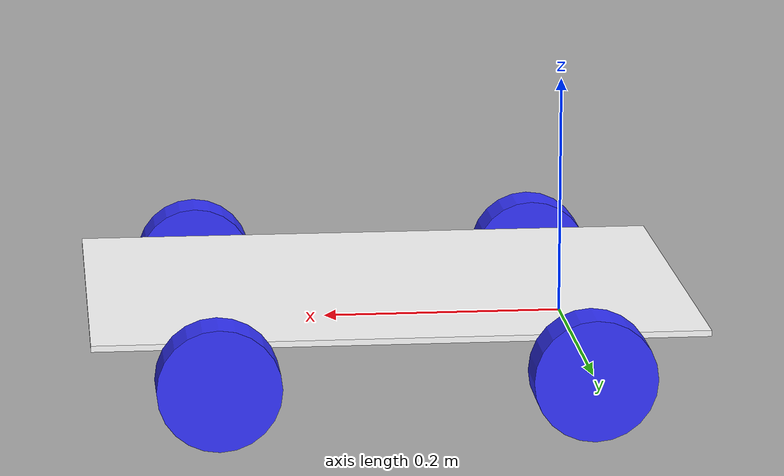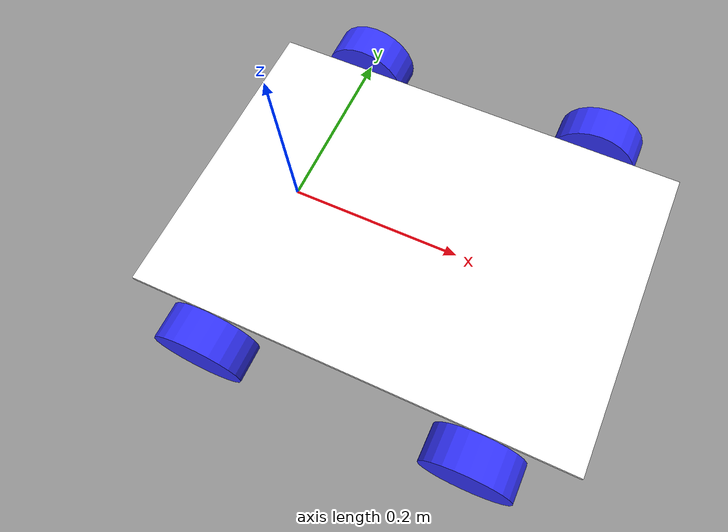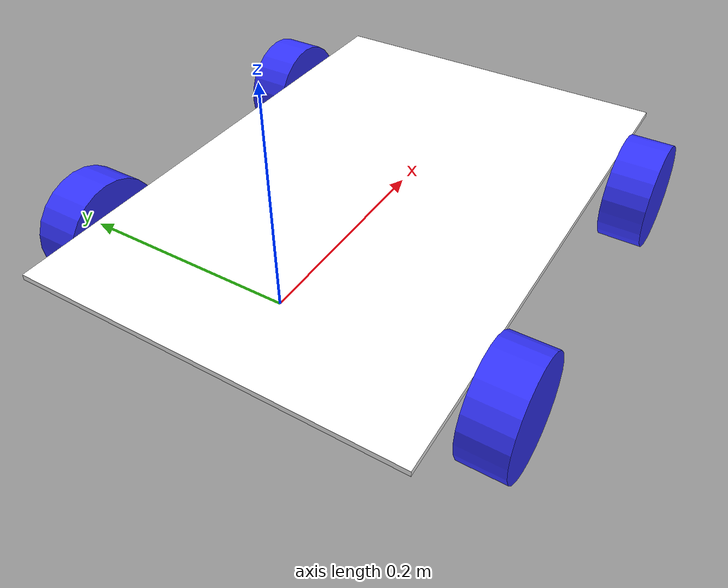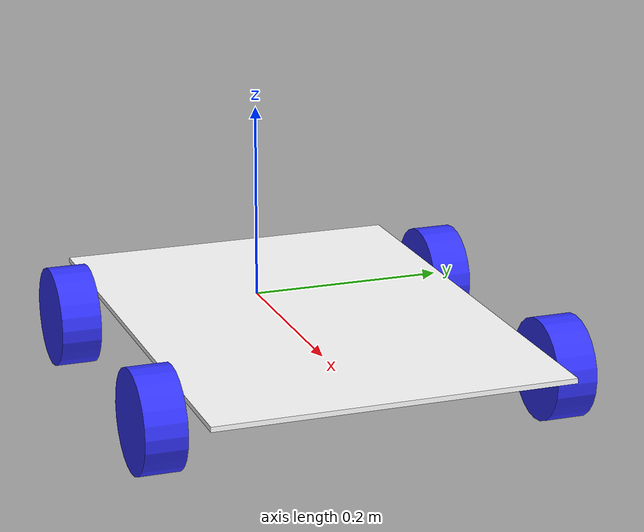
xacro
<?xml version="1.0"?>
<robot xmlns:xacro="http://www.ros.org/wiki/xacro" >

    <xacro:include filename="inertial_macros.xacro"/>

    <material name="white">
        <color rgba="1 1 1 1" />
    </material>

    <material name="orange">
        <color rgba="1 0.3 0.1 1"/>
    </material>

    <material name="blue">
        <color rgba="0.2 0.2 1 1"/>
    </material>

    <material name="black">
        <color rgba="0 0 0 1"/>
    </material>

    <!-- BASE LINK -->

    <link name="base_link">

    </link>

    <!-- CHASSIS LINK -->

    <joint name="chassis_joint" type="fixed">
        <parent link="base_link"/>
        <child link="chassis"/>
        <origin xyz="-0.1 0 -0.05"/>
    </joint>

    <link name="chassis">
        <visual>
            <origin xyz="0.25 0 0.075"/>
            <geometry>
                <box size="0.5 0.35 0.005"/>
            </geometry>
            <material name="white"/>
        </visual>
        <collision>
            <origin xyz="0.25 0 0.075"/>
            <geometry>
                <box size="0.5 0.35 0.005"/>
            </geometry>
        </collision>
        <xacro:inertial_box mass="0.5" x="0.5" y="0.35" z="0.005">
            <origin xyz="0.25 0 0.075" rpy="0 0 0"/>
        </xacro:inertial_box>
    </link>

    <gazebo reference="chassis">
        <material>Gazebo/White</material>
    </gazebo>

    <!-- FRONT LEFT WHEEL LINK -->

    <joint name="front_left_wheel_joint" type="continuous">
        <parent link="base_link"/>
        <child link="front_left_wheel"/>
        <origin xyz="0.3 0.2 0" rpy="-${pi/2} 0 0" />
        <axis xyz="0 0 1"/>
    </joint>

    <link name="front_left_wheel">
        <visual>
            <geometry>
                <cylinder radius="0.05" length="0.04"/>
            </geometry>
            <material name="blue"/>
        </visual>
        <collision>
            <geometry>
                <cylinder radius="0.05" length="0.04"/>
            </geometry>
        </collision>
        <xacro:inertial_cylinder mass="0.1" length="0.04" radius="0.05">
            <origin xyz="0 0 0" rpy="0 0 0"/>
        </xacro:inertial_cylinder>
    </link>

    <gazebo reference="chassis">
        <material>Gazebo/Black</material>
    </gazebo>

    <!-- FRONT RIGHT WHEEL LINK -->

    <joint name="front_right_wheel_joint" type="continuous">
        <parent link="base_link"/>
        <child link="front_right_wheel"/>
        <origin xyz="0.3 -0.2 0" rpy="${pi/2} 0 0" />
        <axis xyz="0 0 -1"/>
    </joint>

    <link name="front_right_wheel">
        <visual>
            <geometry>
                <cylinder radius="0.05" length="0.04"/>
            </geometry>
            <material name="blue"/>
        </visual>
        <collision>
            <geometry>
                <cylinder radius="0.05" length="0.04"/>
            </geometry>
        </collision>
        <xacro:inertial_cylinder mass="0.1" length="0.04" radius="0.05">
            <origin xyz="0 0 0" rpy="0 0 0"/>
        </xacro:inertial_cylinder>
    </link>

    <gazebo reference="chassis">
        <material>Gazebo/Black</material>
    </gazebo>

    <!-- BACK LEFT WHEEL LINK -->

    <joint name="back_left_wheel_joint" type="continuous">
        <parent link="base_link"/>
        <child link="back_left_wheel"/>
        <origin xyz="0 0.2 0" rpy="-${pi/2} 0 0" />
        <axis xyz="0 0 1"/>
    </joint>

    <link name="back_left_wheel">
        <visual>
            <geometry>
                <cylinder radius="0.05" length="0.04"/>
            </geometry>
            <material name="blue"/>
        </visual>
        <collision>
            <geometry>
                <cylinder radius="0.05" length="0.04"/>
            </geometry>
        </collision>
        <xacro:inertial_cylinder mass="0.1" length="0.04" radius="0.05">
            <origin xyz="0 0 0" rpy="0 0 0"/>
        </xacro:inertial_cylinder>
    </link>

    <gazebo reference="chassis">
        <material>Gazebo/Black</material>
    </gazebo>

    <!-- BACK RIGHT WHEEL LINK -->

    <joint name="back_right_wheel_joint" type="continuous">
        <parent link="base_link"/>
        <child link="back_right_wheel"/>
        <origin xyz="0 -0.2 0" rpy="${pi/2} 0 0" />
        <axis xyz="0 0 -1"/>
    </joint>

    <link name="back_right_wheel">
        <visual>
            <geometry>
                <cylinder radius="0.05" length="0.04"/>
            </geometry>
            <material name="blue"/>
        </visual>
        <collision>
            <geometry>
                <cylinder radius="0.05" length="0.04"/>
            </geometry>
        </collision>
        <xacro:inertial_cylinder mass="0.1" length="0.04" radius="0.05">
            <origin xyz="0 0 0" rpy="0 0 0"/>
        </xacro:inertial_cylinder>
    </link>

    <gazebo reference="chassis">
        <material>Gazebo/Black</material>
    </gazebo>

</robot>

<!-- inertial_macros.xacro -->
<robot xmlns:xacro="http://www.ros.org/wiki/xacro" >

    <!-- Specify some standard inertial calculations https://en.wikipedia.org/wiki/List_of_moments_of_inertia -->
    <!-- These make use of xacro's mathematical functionality -->

    <xacro:macro name="inertial_sphere" params="mass radius *origin">
        <inertial>
            <xacro:insert_block name="origin"/>
            <mass value="${mass}" />
            <inertia ixx="${(2/5) * mass * (radius*radius)}" ixy="0.0" ixz="0.0"
                    iyy="${(2/5) * mass * (radius*radius)}" iyz="0.0"
                    izz="${(2/5) * mass * (radius*radius)}" />
        </inertial>
    </xacro:macro>

    <xacro:macro name="inertial_box" params="mass x y z *origin">
        <inertial>
            <xacro:insert_block name="origin"/>
            <mass value="${mass}" />
            <inertia ixx="${(1/12) * mass * (y*y+z*z)}" ixy="0.0" ixz="0.0"
                    iyy="${(1/12) * mass * (x*x+z*z)}" iyz="0.0"
                    izz="${(1/12) * mass * (x*x+y*y)}" />
        </inertial>
    </xacro:macro>

    <xacro:macro name="inertial_cylinder" params="mass length radius *origin">
        <inertial>
            <xacro:insert_block name="origin"/>
            <mass value="${mass}" />
            <inertia ixx="${(1/12) * mass * (length*length + 3*radius*radius)}" ixy="0.0" ixz="0.0"
                    iyy="${(1/12) * mass * (length*length + 3*radius*radius)}" iyz="0.0"
                    izz="${(1/2) * mass * (radius*radius)}" />
        </inertial>
    </xacro:macro>

</robot>
